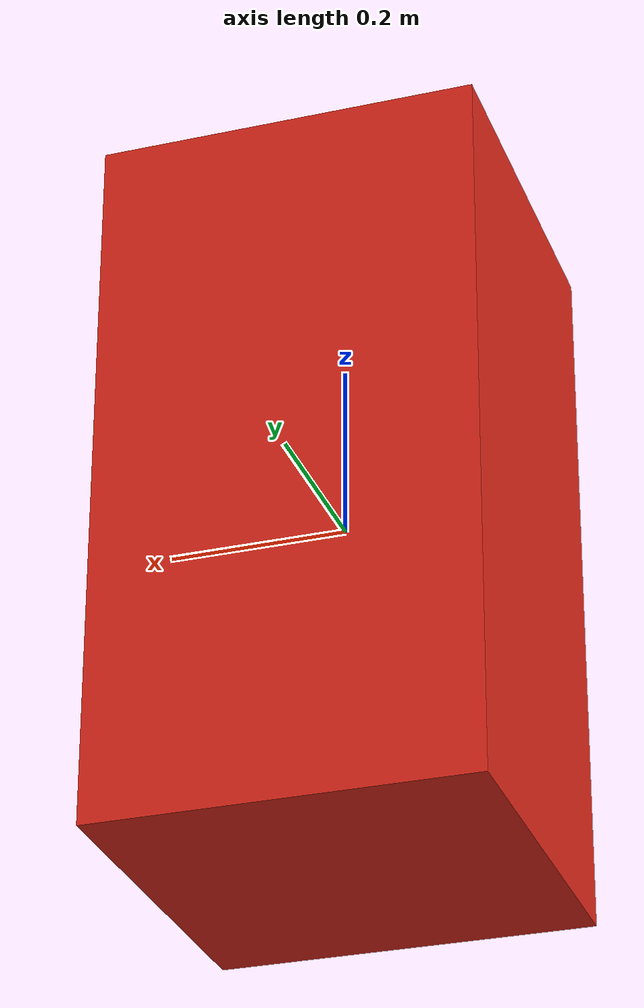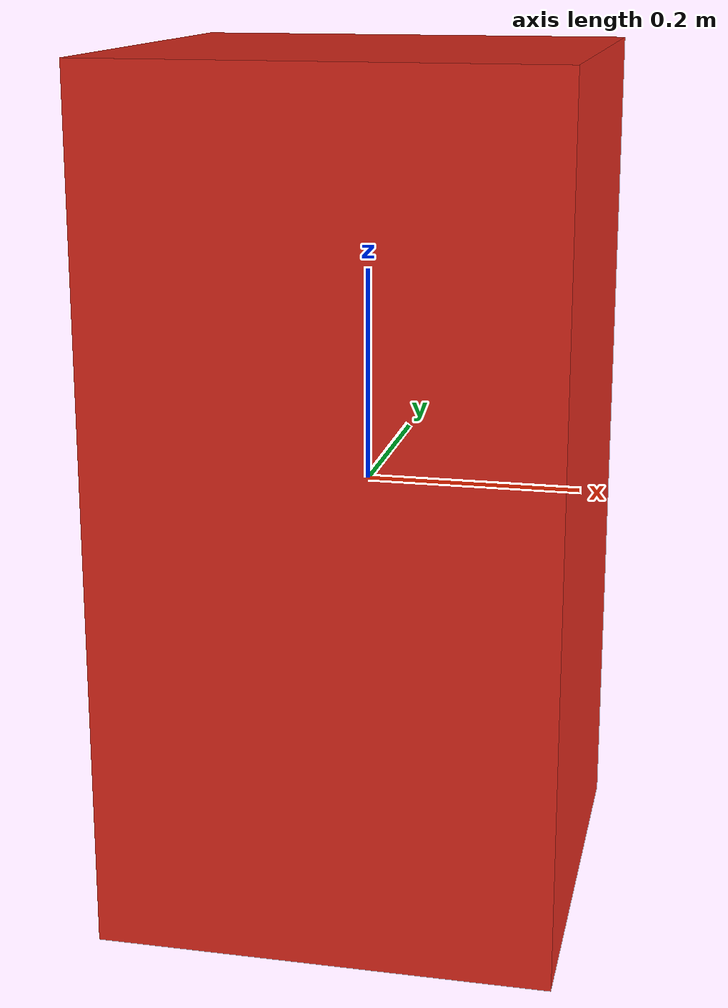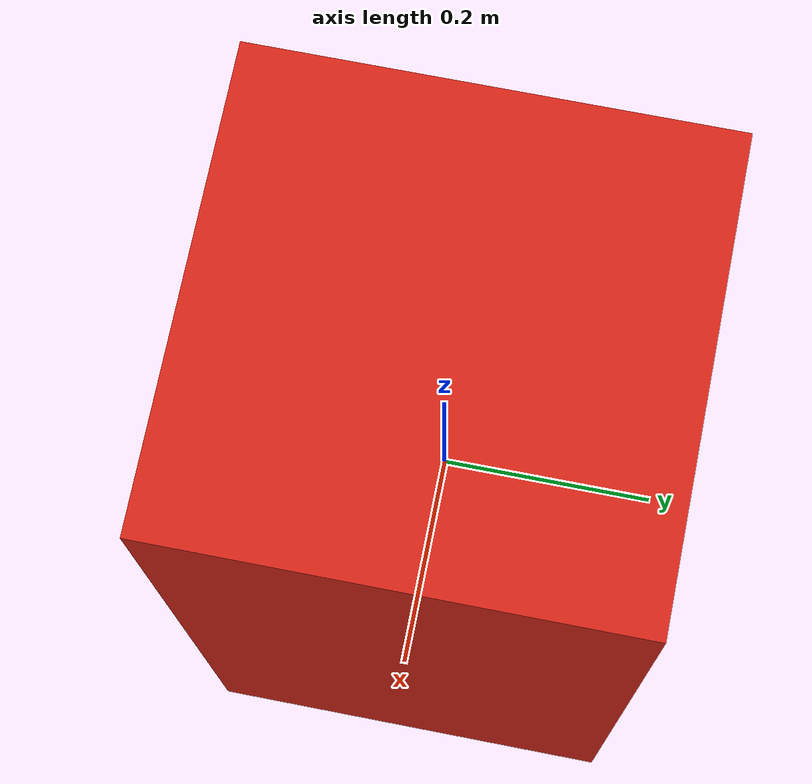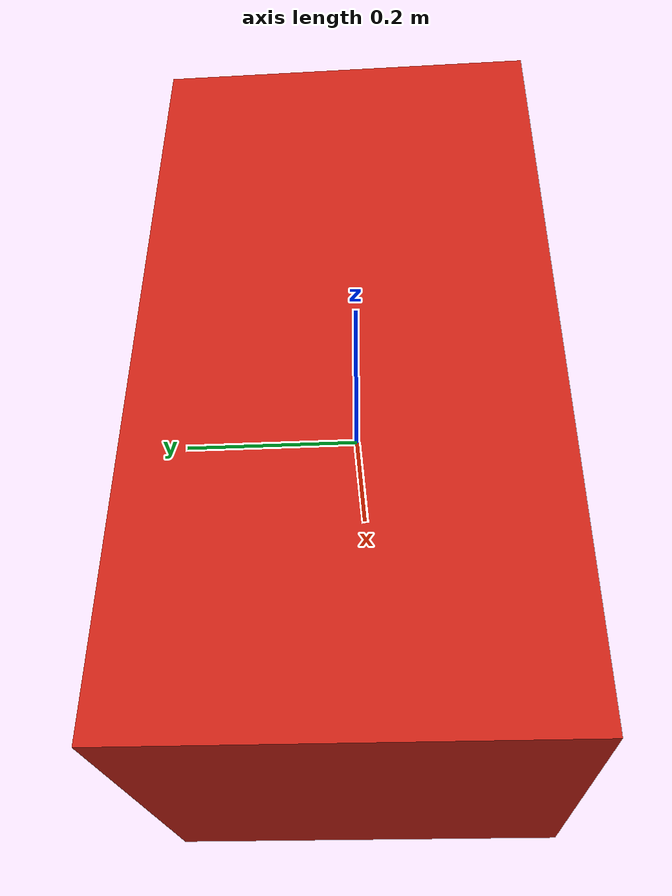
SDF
<?xml version="1.0" ?>
<sdf version="1.9">
  <model name="flybrain_obstacle">
    <static>false</static>
    <self_collide>false</self_collide>
    <link name="body">
      <inertial>
        <mass>15.0</mass>
        <inertia>
          <ixx>0.40</ixx><iyy>0.40</iyy><izz>0.40</izz>
          <ixy>0.0</ixy><ixz>0.0</ixz><iyz>0.0</iyz>
        </inertia>
      </inertial>
      <collision name="collision">
        <geometry><box><size>0.42 0.42 0.80</size></box></geometry>
        <max_contacts>20</max_contacts>
      </collision>
      <visual name="visual">
        <geometry><box><size>0.42 0.42 0.80</size></box></geometry>
        <material><diffuse>0.85 0.15 0.10 1</diffuse><ambient>0.85 0.15 0.10 1</ambient></material>
      </visual>
      <!-- The contact sensor is on the spawned obstacle, keeping the robot
           description untouched while still yielding physical-collision data. -->
      <sensor name="contact" type="contact">
        <always_on>1</always_on>
        <update_rate>100</update_rate>
        <topic>/benchmark/contacts</topic>
        <contact><collision>collision</collision></contact>
      </sensor>
    </link>
  </model>
</sdf>
